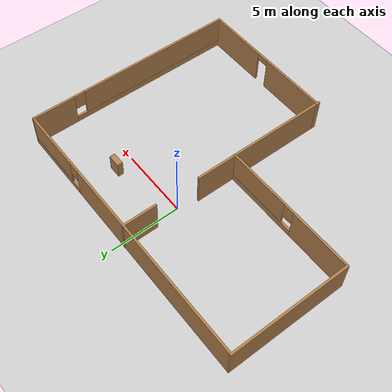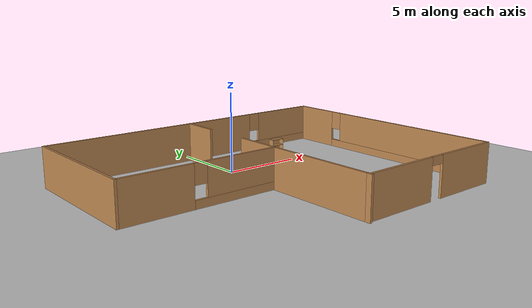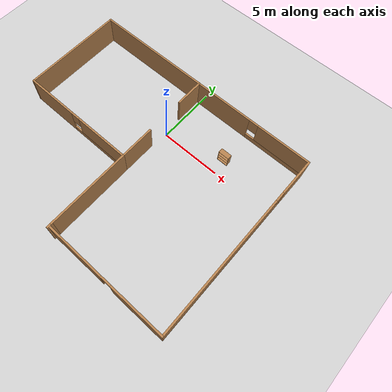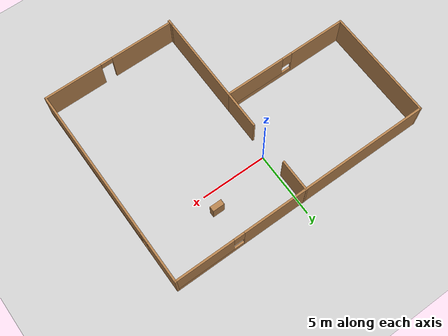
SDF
<sdf version="1.7">
 <world name="default">
  <light name="sun" type="directional">
   <pose>0 0 10 0 -0 0</pose>
   <diffuse>0.8 0.8 0.8 1</diffuse>
   <specular>0.2 0.2 0.2 1</specular>
   <attenuation>
    <range>1000</range>
    <constant>0.9</constant>
    <linear>0.01</linear>
    <quadratic>0.001</quadratic>
   </attenuation>
   <direction>-0.5 0.1 -0.9</direction>
   <spot><inner_angle>0</inner_angle><outer_angle>0</outer_angle><falloff>0</falloff></spot>
  </light>
  <model name="ground_plane">
   <static>1</static>
   <link name="link">
    <collision name="collision">
     <geometry><plane><normal>0 0 1</normal><size>100 100</size></plane></geometry>
     <surface><friction><ode><mu>100</mu><mu2>50</mu2></ode></friction></surface>
    </collision>
    <visual name="visual">
     <cast_shadows>0</cast_shadows>
     <geometry><plane><normal>0 0 1</normal><size>100 100</size></plane></geometry>
     <material>
      <script><uri>file://media/materials/scripts/gazebo.material</uri><name>Gazebo/Grey</name></script>
     </material>
    </visual>
   </link>
  </model>
  <gravity>0 0 -9.8</gravity>
  <magnetic_field>6e-06 2.3e-05 -4.2e-05</magnetic_field>
  <atmosphere type="adiabatic"/>
  <physics type="ode">
   <max_step_size>0.001</max_step_size>
   <real_time_factor>1</real_time_factor>
   <real_time_update_rate>1000</real_time_update_rate>
  </physics>
  <scene><ambient>0.4 0.4 0.4 1</ambient><background>0.7 0.7 0.7 1</background><shadows>1</shadows></scene>
  <audio><device>default</device></audio>
  <spherical_coordinates>
   <surface_model>EARTH_WGS84</surface_model>
   <latitude_deg>0</latitude_deg>
   <longitude_deg>0</longitude_deg>
   <elevation>0</elevation>
   <heading_deg>0</heading_deg>
  </spherical_coordinates>
  <model name="world_1">
   <pose>-0.065118 -3.69421 0 0 -0 0</pose>
   <link name="Wall_10">
    <pose>10.054 0.052024 0 0 -0 -1.5708</pose>
    <visual name="Wall_10_Visual_0">
     <pose>-6.28187 0 1.25 0 -0 0</pose>
     <geometry><box><size>3.18626 0.15 2.5</size></box></geometry>
     <material>
      <script><uri>file://media/materials/scripts/gazebo.material</uri><name>Gazebo/Wood</name></script>
      <ambient>1 1 1 1</ambient>
     </material>
     <meta><layer>0</layer></meta>
    </visual>
    <collision name="Wall_10_Collision_0">
     <geometry><box><size>3.18626 0.15 2.5</size></box></geometry>
     <pose>-6.28187 0 1.25 0 -0 0</pose>
    </collision>
    <visual name="Wall_10_Visual_1">
     <pose>1.59313 0 0.25 0 -0 0</pose>
     <geometry><box><size>12.5637 0.15 0.5</size></box></geometry>
     <material>
      <script><uri>file://media/materials/scripts/gazebo.material</uri><name>Gazebo/Wood</name></script>
      <ambient>1 1 1 1</ambient>
     </material>
     <meta><layer>0</layer></meta>
    </visual>
    <collision name="Wall_10_Collision_1">
     <geometry><box><size>12.5637 0.15 0.5</size></box></geometry>
     <pose>1.59313 0 0.25 0 -0 0</pose>
    </collision>
    <visual name="Wall_10_Visual_2">
     <pose>1.99313 0 1.5 0 -0 0</pose>
     <geometry><box><size>11.7637 0.15 2</size></box></geometry>
     <material>
      <script><uri>file://media/materials/scripts/gazebo.material</uri><name>Gazebo/Wood</name></script>
      <ambient>1 1 1 1</ambient>
     </material>
     <meta><layer>0</layer></meta>
    </visual>
    <collision name="Wall_10_Collision_2">
     <geometry><box><size>11.7637 0.15 2</size></box></geometry>
     <pose>1.99313 0 1.5 0 -0 0</pose>
    </collision>
    <visual name="Wall_10_Visual_3">
     <pose>-4.28874 0 1.9 0 -0 0</pose>
     <geometry><box><size>0.8 0.15 1.2</size></box></geometry>
     <material>
      <script><uri>file://media/materials/scripts/gazebo.material</uri><name>Gazebo/Wood</name></script>
      <ambient>1 1 1 1</ambient>
     </material>
     <meta><layer>0</layer></meta>
    </visual>
    <collision name="Wall_10_Collision_3">
     <geometry><box><size>0.8 0.15 1.2</size></box></geometry>
     <pose>-4.28874 0 1.9 0 -0 0</pose>
    </collision>
   </link>
   <link name="Wall_11">
    <pose>5.00397 -7.74798 0 0 -0 3.14159</pose>
    <visual name="Wall_11_Visual_0">
     <pose>-2.87913 0 1.25 0 -0 0</pose>
     <geometry><box><size>4.49174 0.15 2.5</size></box></geometry>
     <material>
      <script><uri>file://media/materials/scripts/gazebo.material</uri><name>Gazebo/Wood</name></script>
      <ambient>1 1 1 1</ambient>
     </material>
     <meta><layer>0</layer></meta>
    </visual>
    <collision name="Wall_11_Collision_0">
     <geometry><box><size>4.49174 0.15 2.5</size></box></geometry>
     <pose>-2.87913 0 1.25 0 -0 0</pose>
    </collision>
    <visual name="Wall_11_Visual_1">
     <pose>2.69587 0 1.25 0 -0 0</pose>
     <geometry><box><size>4.85826 0.15 2.5</size></box></geometry>
     <material>
      <script><uri>file://media/materials/scripts/gazebo.material</uri><name>Gazebo/Wood</name></script>
      <ambient>1 1 1 1</ambient>
     </material>
     <meta><layer>0</layer></meta>
    </visual>
    <collision name="Wall_11_Collision_1">
     <geometry><box><size>4.85826 0.15 2.5</size></box></geometry>
     <pose>2.69587 0 1.25 0 -0 0</pose>
    </collision>
    <visual name="Wall_11_Visual_2">
     <pose>-0.183258 0 2.25 0 -0 0</pose>
     <geometry><box><size>0.9 0.15 0.5</size></box></geometry>
     <material>
      <script><uri>file://media/materials/scripts/gazebo.material</uri><name>Gazebo/Wood</name></script>
      <ambient>1 1 1 1</ambient>
     </material>
     <meta><layer>0</layer></meta>
    </visual>
    <collision name="Wall_11_Collision_2">
     <geometry><box><size>0.9 0.15 0.5</size></box></geometry>
     <pose>-0.183258 0 2.25 0 -0 0</pose>
    </collision>
   </link>
   <link name="Wall_14">
    <collision name="Wall_14_Collision">
     <geometry><box><size>8.6739 0.15 2.5</size></box></geometry>
     <pose>0 0 1.25 0 -0 0</pose>
    </collision>
    <visual name="Wall_14_Visual">
     <pose>0 0 1.25 0 -0 0</pose>
     <geometry><box><size>8.6739 0.15 2.5</size></box></geometry>
     <material>
      <script><uri>file://media/materials/scripts/gazebo.material</uri><name>Gazebo/Wood</name></script>
      <ambient>1 1 1 1</ambient>
     </material>
     <meta><layer>0</layer></meta>
    </visual>
    <pose>-10.054 3.59146 0 0 -0 1.5708</pose>
   </link>
   <link name="Wall_16">
    <pose>-5.12897 -0.670478 0 0 -0 0</pose>
    <visual name="Wall_16_Visual_0">
     <pose>-2.75 0 1.25 0 -0 0</pose>
     <geometry><box><size>4.5 0.15 2.5</size></box></geometry>
     <material>
      <script><uri>file://media/materials/scripts/gazebo.material</uri><name>Gazebo/Wood</name></script>
      <ambient>1 1 1 1</ambient>
     </material>
     <meta><layer>0</layer></meta>
    </visual>
    <collision name="Wall_16_Collision_0">
     <geometry><box><size>4.5 0.15 2.5</size></box></geometry>
     <pose>-2.75 0 1.25 0 -0 0</pose>
    </collision>
    <visual name="Wall_16_Visual_1">
     <pose>2.25 0 0.25 0 -0 0</pose>
     <geometry><box><size>5.5 0.15 0.5</size></box></geometry>
     <material>
      <script><uri>file://media/materials/scripts/gazebo.material</uri><name>Gazebo/Wood</name></script>
      <ambient>1 1 1 1</ambient>
     </material>
     <meta><layer>0</layer></meta>
    </visual>
    <collision name="Wall_16_Collision_1">
     <geometry><box><size>5.5 0.15 0.5</size></box></geometry>
     <pose>2.25 0 0.25 0 -0 0</pose>
    </collision>
    <visual name="Wall_16_Visual_2">
     <pose>2.65 0 1.5 0 -0 0</pose>
     <geometry><box><size>4.7 0.15 2</size></box></geometry>
     <material>
      <script><uri>file://media/materials/scripts/gazebo.material</uri><name>Gazebo/Wood</name></script>
      <ambient>1 1 1 1</ambient>
     </material>
     <meta><layer>0</layer></meta>
    </visual>
    <collision name="Wall_16_Collision_2">
     <geometry><box><size>4.7 0.15 2</size></box></geometry>
     <pose>2.65 0 1.5 0 -0 0</pose>
    </collision>
    <visual name="Wall_16_Visual_3">
     <pose>-0.1 0 1.9 0 -0 0</pose>
     <geometry><box><size>0.8 0.15 1.2</size></box></geometry>
     <material>
      <script><uri>file://media/materials/scripts/gazebo.material</uri><name>Gazebo/Wood</name></script>
      <ambient>1 1 1 1</ambient>
     </material>
     <meta><layer>0</layer></meta>
    </visual>
    <collision name="Wall_16_Collision_3">
     <geometry><box><size>0.8 0.15 1.2</size></box></geometry>
     <pose>-0.1 0 1.9 0 -0 0</pose>
    </collision>
   </link>
   <link name="Wall_17">
    <collision name="Wall_17_Collision">
     <geometry><box><size>7 0.15 2.5</size></box></geometry>
     <pose>0 0 1.25 0 -0 0</pose>
    </collision>
    <visual name="Wall_17_Visual">
     <pose>0 0 1.25 0 -0 0</pose>
     <geometry><box><size>7 0.15 2.5</size></box></geometry>
     <material>
      <script><uri>file://media/materials/scripts/gazebo.material</uri><name>Gazebo/Wood</name></script>
      <ambient>1 1 1 1</ambient>
     </material>
     <meta><layer>0</layer></meta>
    </visual>
    <pose>-0.203974 -4.09548 0 0 -0 -1.5708</pose>
   </link>
   <link name="Wall_20">
    <collision name="Wall_20_Collision">
     <geometry><box><size>0.5 0.15 2.5</size></box></geometry>
     <pose>0 0 1.25 0 -0 0</pose>
    </collision>
    <visual name="Wall_20_Visual">
     <pose>0 0 1.25 0 -0 0</pose>
     <geometry><box><size>0.5 0.15 2.5</size></box></geometry>
     <material>
      <script><uri>file://media/materials/scripts/gazebo.material</uri><name>Gazebo/Wood</name></script>
      <ambient>1 1 1 1</ambient>
     </material>
     <meta><layer>0</layer></meta>
    </visual>
    <pose>-0.203974 -7.69548 0 0 -0 -1.5708</pose>
   </link>
   <link name="Wall_23">
    <collision name="Wall_23_Collision">
     <geometry><box><size>3 0.15 2.5</size></box></geometry>
     <pose>0 0 1.25 0 -0 0</pose>
    </collision>
    <visual name="Wall_23_Visual">
     <pose>0 0 1.25 0 -0 0</pose>
     <geometry><box><size>3 0.15 2.5</size></box></geometry>
     <material>
      <script><uri>file://media/materials/scripts/gazebo.material</uri><name>Gazebo/Wood</name></script>
      <ambient>1 1 1 1</ambient>
     </material>
     <meta><layer>0</layer></meta>
    </visual>
    <pose>-0.203974 0.754522 0 0 -0 1.5708</pose>
   </link>
   <link name="Wall_25">
    <collision name="Wall_25_Collision">
     <geometry><box><size>2.5 0.15 2.5</size></box></geometry>
     <pose>0 0 1.25 0 -0 0</pose>
    </collision>
    <visual name="Wall_25_Visual">
     <pose>0 0 1.25 0 -0 0</pose>
     <geometry><box><size>2.5 0.15 2.5</size></box></geometry>
     <material>
      <script><uri>file://media/materials/scripts/gazebo.material</uri><name>Gazebo/Wood</name></script>
      <ambient>1 1 1 1</ambient>
     </material>
     <meta><layer>0</layer></meta>
    </visual>
    <pose>-0.207744 6.69548 0 0 -0 -1.5708</pose>
   </link>
   <link name="Wall_9">
    <pose>0.003974 7.85202 0 0 -0 0</pose>
    <visual name="Wall_9_Visual_0">
     <pose>-2.68229 0 1.25 0 -0 0</pose>
     <geometry><box><size>14.8854 0.15 2.5</size></box></geometry>
     <material>
      <script><uri>file://media/materials/scripts/gazebo.material</uri><name>Gazebo/Wood</name></script>
      <ambient>1 1 1 1</ambient>
     </material>
     <meta><layer>0</layer></meta>
    </visual>
    <collision name="Wall_9_Collision_0">
     <geometry><box><size>14.8854 0.15 2.5</size></box></geometry>
     <pose>-2.68229 0 1.25 0 -0 0</pose>
    </collision>
    <visual name="Wall_9_Visual_1">
     <pose>7.44271 0 0.25 0 -0 0</pose>
     <geometry><box><size>5.36459 0.15 0.5</size></box></geometry>
     <material>
      <script><uri>file://media/materials/scripts/gazebo.material</uri><name>Gazebo/Wood</name></script>
      <ambient>1 1 1 1</ambient>
     </material>
     <meta><layer>0</layer></meta>
    </visual>
    <collision name="Wall_9_Collision_1">
     <geometry><box><size>5.36459 0.15 0.5</size></box></geometry>
     <pose>7.44271 0 0.25 0 -0 0</pose>
    </collision>
    <visual name="Wall_9_Visual_2">
     <pose>7.8427 0 1.5 0 -0 0</pose>
     <geometry><box><size>4.56459 0.15 2</size></box></geometry>
     <material>
      <script><uri>file://media/materials/scripts/gazebo.material</uri><name>Gazebo/Wood</name></script>
      <ambient>1 1 1 1</ambient>
     </material>
     <meta><layer>0</layer></meta>
    </visual>
    <collision name="Wall_9_Collision_2">
     <geometry><box><size>4.56459 0.15 2</size></box></geometry>
     <pose>7.8427 0 1.5 0 -0 0</pose>
    </collision>
    <visual name="Wall_9_Visual_3">
     <pose>5.16041 0 1.9 0 -0 0</pose>
     <geometry><box><size>0.8 0.15 1.2</size></box></geometry>
     <material>
      <script><uri>file://media/materials/scripts/gazebo.material</uri><name>Gazebo/Wood</name></script>
      <ambient>1 1 1 1</ambient>
     </material>
     <meta><layer>0</layer></meta>
    </visual>
    <collision name="Wall_9_Collision_3">
     <geometry><box><size>0.8 0.15 1.2</size></box></geometry>
     <pose>5.16041 0 1.9 0 -0 0</pose>
    </collision>
   </link>
   <static>1</static>
  </model>
  <model name="bookshelf">
   <static>1</static>
   <link name="link">
    <inertial><mass>1</mass></inertial>
    <collision name="back">
     <pose>0 0.005 0.6 0 -0 0</pose>
     <geometry><box><size>0.9 0.01 1.2</size></box></geometry>
    </collision>
    <visual name="visual1">
     <pose>0 0.005 0.6 0 -0 0</pose>
     <geometry><box><size>0.9 0.01 1.2</size></box></geometry>
     <material>
      <script><uri>file://media/materials/scripts/gazebo.material</uri><name>Gazebo/Wood</name></script>
     </material>
    </visual>
    <collision name="left_side">
     <pose>0.45 -0.195 0.6 0 -0 0</pose>
     <geometry><box><size>0.02 0.4 1.2</size></box></geometry>
    </collision>
    <visual name="visual2">
     <pose>0.45 -0.195 0.6 0 -0 0</pose>
     <geometry><box><size>0.02 0.4 1.2</size></box></geometry>
     <material>
      <script><uri>file://media/materials/scripts/gazebo.material</uri><name>Gazebo/Wood</name></script>
     </material>
    </visual>
    <collision name="right_side">
     <pose>-0.45 -0.195 0.6 0 -0 0</pose>
     <geometry><box><size>0.02 0.4 1.2</size></box></geometry>
    </collision>
    <visual name="visual3">
     <pose>-0.45 -0.195 0.6 0 -0 0</pose>
     <geometry><box><size>0.02 0.4 1.2</size></box></geometry>
     <material>
      <script><uri>file://media/materials/scripts/gazebo.material</uri><name>Gazebo/Wood</name></script>
     </material>
    </visual>
    <collision name="bottom">
     <pose>0 -0.195 0.03 0 -0 0</pose>
     <geometry><box><size>0.88 0.4 0.06</size></box></geometry>
    </collision>
    <visual name="visual4">
     <pose>0 -0.195 0.03 0 -0 0</pose>
     <geometry><box><size>0.88 0.4 0.06</size></box></geometry>
     <material>
      <script><uri>file://media/materials/scripts/gazebo.material</uri><name>Gazebo/Wood</name></script>
     </material>
    </visual>
    <collision name="top">
     <pose>0 -0.195 1.19 0 -0 0</pose>
     <geometry><box><size>0.88 0.4 0.02</size></box></geometry>
    </collision>
    <visual name="visual5">
     <pose>0 -0.195 1.19 0 -0 0</pose>
     <geometry><box><size>0.88 0.4 0.02</size></box></geometry>
     <material>
      <script><uri>file://media/materials/scripts/gazebo.material</uri><name>Gazebo/Wood</name></script>
     </material>
    </visual>
    <collision name="low_shelf">
     <pose>0 -0.195 0.43 0 -0 0</pose>
     <geometry><box><size>0.88 0.4 0.02</size></box></geometry>
    </collision>
    <visual name="visual6">
     <pose>0 -0.195 0.43 0 -0 0</pose>
     <geometry><box><size>0.88 0.4 0.02</size></box></geometry>
     <material>
      <script><uri>file://media/materials/scripts/gazebo.material</uri><name>Gazebo/Wood</name></script>
     </material>
    </visual>
    <collision name="high_shelf">
     <pose>0 -0.195 0.8 0 -0 0</pose>
     <geometry><box><size>0.88 0.4 0.02</size></box></geometry>
    </collision>
    <visual name="visual7">
     <pose>0 -0.195 0.8 0 -0 0</pose>
     <geometry><box><size>0.88 0.4 0.02</size></box></geometry>
     <material>
      <script><uri>file://media/materials/scripts/gazebo.material</uri><name>Gazebo/Wood</name></script>
     </material>
    </visual>
   </link>
   <pose>4.80356 1.49871 0 0 -0 0</pose>
  </model>
 </world>
</sdf>
